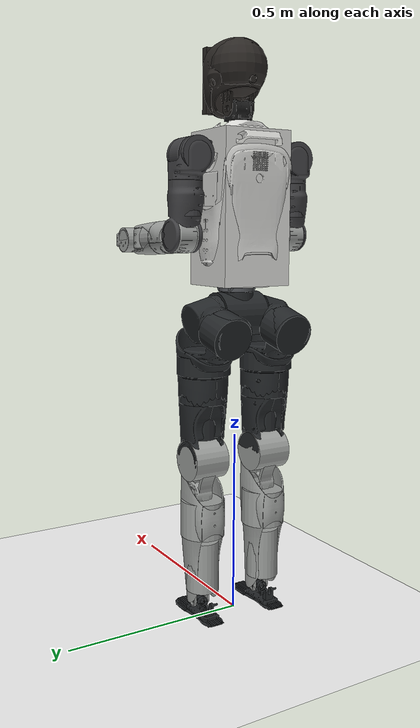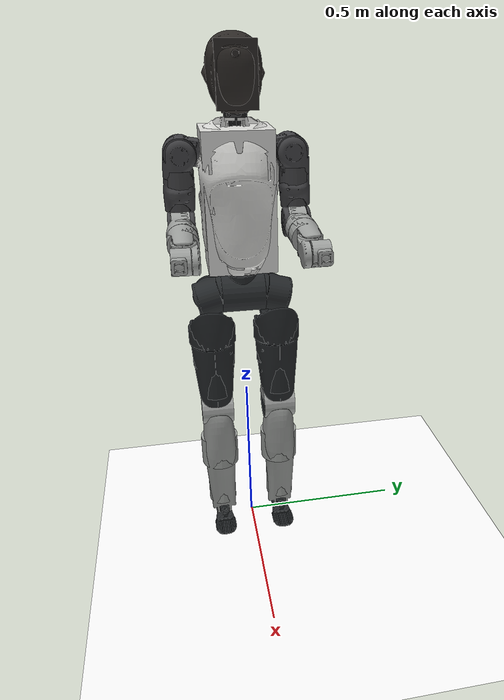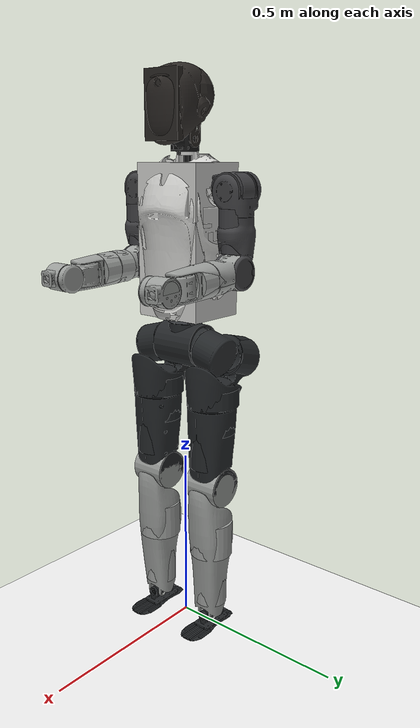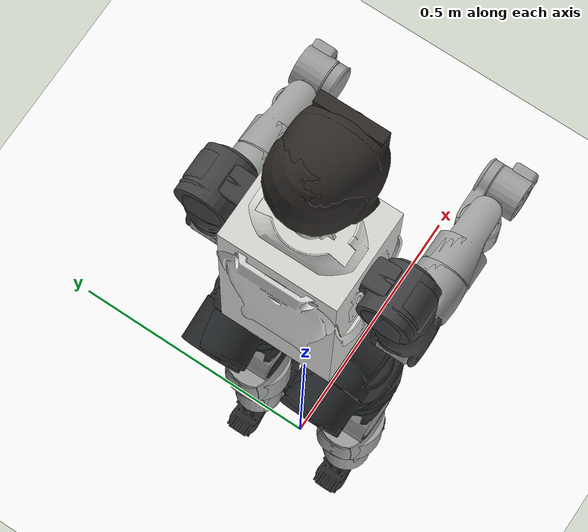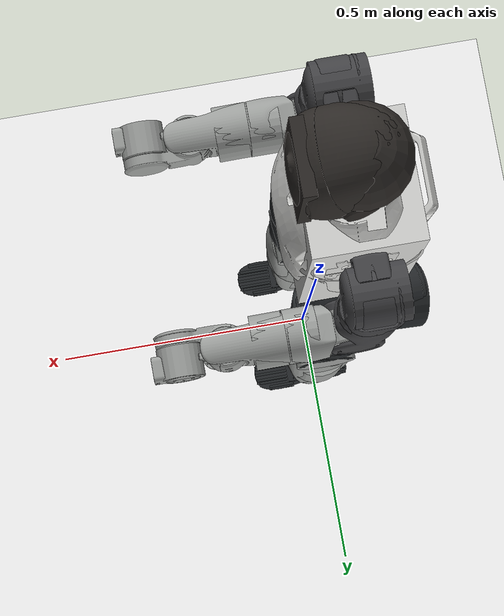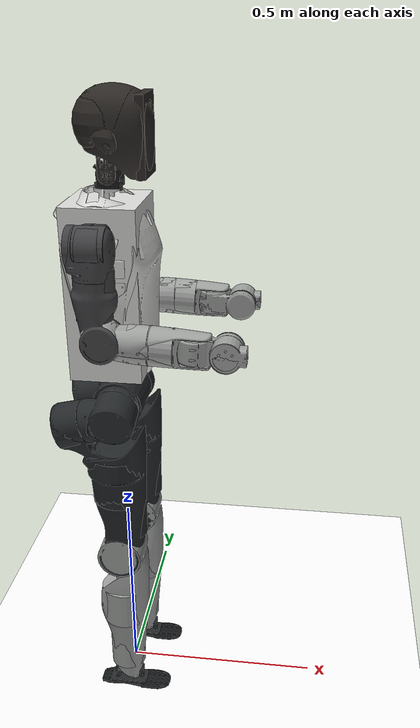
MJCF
<mujoco model="vita02a">
  <compiler angle="radian" meshdir="meshes/"/>

  <asset>
    <mesh name="base_link" content_type="model/stl" file="base_link.STL"/>
    <mesh name="left_hip_pitch_link" content_type="model/stl" file="left_hip_pitch_link.STL"/>
    <mesh name="left_hip_roll_link" content_type="model/stl" file="left_hip_roll_link.STL"/>
    <mesh name="left_hip_yaw_link" content_type="model/stl" file="left_hip_yaw_link.STL"/>
    <mesh name="left_knee_link" content_type="model/stl" file="left_knee_link.STL"/>
    <mesh name="left_ankle_pitch_link" content_type="model/stl" file="left_ankle_pitch_link.STL"/>
    <mesh name="left_ankle_roll_link_noshoes" content_type="model/stl" file="left_ankle_roll_link_noshoes.STL"/>
    <mesh name="right_hip_pitch_link" content_type="model/stl" file="right_hip_pitch_link.STL"/>
    <mesh name="right_hip_roll_link" content_type="model/stl" file="right_hip_roll_link.STL"/>
    <mesh name="right_hip_yaw_link" content_type="model/stl" file="right_hip_yaw_link.STL"/>
    <mesh name="right_knee_link" content_type="model/stl" file="right_knee_link.STL"/>
    <mesh name="right_ankle_pitch_link" content_type="model/stl" file="right_ankle_pitch_link.STL"/>
    <mesh name="right_ankle_roll_link_noshoes" content_type="model/stl" file="right_ankle_roll_link_noshoes.STL"/>
    <mesh name="waist_yaw_link" content_type="model/stl" file="waist_yaw_link.STL"/>
    <mesh name="waist_pitch_link" content_type="model/stl" file="waist_pitch_link.STL"/>
    <mesh name="neck_yaw_link" content_type="model/stl" file="neck_yaw_link.STL"/>
    <mesh name="neck_pitch_link" content_type="model/stl" file="neck_pitch_link.STL"/>
    <mesh name="left_shoulder_pitch_link" content_type="model/stl" file="left_shoulder_pitch_link.STL"/>
    <mesh name="left_shoulder_roll_link" content_type="model/stl" file="left_shoulder_roll_link.STL"/>
    <mesh name="left_shoulder_yaw_link" content_type="model/stl" file="left_shoulder_yaw_link.STL"/>
    <mesh name="left_elbow_link" content_type="model/stl" file="left_elbow_link.STL"/>
    <mesh name="left_wrist_roll_link" content_type="model/stl" file="left_wrist_roll_link.STL"/>
    <mesh name="left_wrist_yaw_link" content_type="model/stl" file="left_wrist_yaw_link.STL"/>
    <mesh name="left_wrist_pitch_link" content_type="model/stl" file="left_wrist_pitch_link.STL"/>
    <mesh name="right_shoulder_pitch_link" content_type="model/stl" file="right_shoulder_pitch_link.STL"/>
    <mesh name="right_shoulder_roll_link" content_type="model/stl" file="right_shoulder_roll_link.STL"/>
    <mesh name="right_shoulder_yaw_link" content_type="model/stl" file="right_shoulder_yaw_link.STL"/>
    <mesh name="right_elbow_link" content_type="model/stl" file="right_elbow_link.STL"/>
    <mesh name="right_wrist_roll_link" content_type="model/stl" file="right_wrist_roll_link.STL"/>
    <mesh name="right_wrist_yaw_link" content_type="model/stl" file="right_wrist_yaw_link.STL"/>
    <mesh name="right_wrist_pitch_link" content_type="model/stl" file="right_wrist_pitch_link.STL"/>

    <texture type="skybox" builtin="gradient" rgb1="1 1 1" rgb2="1 1 1" width="800" height="800"/>
    <texture type="2d" name="groundplane" builtin="checker" mark="edge" rgb1="1 1 1" rgb2="1 1 1" markrgb="0 0 0" width="300" height="300"/>
    <material name="groundplane" texture="groundplane" texuniform="true" texrepeat="5 5" reflectance="0"/>
  </asset>

    <visual>
    <headlight diffuse="0.6 0.6 0.6" ambient="0.1 0.1 0.1" specular="0.9 0.9 0.9"/>
    <rgba haze="0.15 0.25 0.35 1"/>
    <global azimuth="-140" elevation="-20" offwidth="2080" offheight="1170"/>
  </visual>

  <worldbody>
    <geom name="floor" size="0 0 0.01" type="plane" material="groundplane" contype="1" conaffinity="0" priority="1" friction="0.6" condim="3"/>
    <light diffuse=".5 .5 .5" pos="-3 -3 5" dir="3 3 -5" castshadow="true"/>

    <body name="base_link" pos="0 0 0.85">
      <inertial pos="0.00218083 0.00030202 -0.00612254" quat="0.704772 0.702526 0.0724821 -0.0670809" mass="2.0542" diaginertia="0.00486979 0.00479575 0.00310247"/>
      <joint type="free"/>
      <geom type="mesh" contype="0" conaffinity="0" group="1" density="0" rgba="0.145 0.157 0.165 1" mesh="base_link"/>
      <geom name="collision_pelvis_cylinder" size="0.06 0.065" pos="0 0 -0.015" quat="0.707105 0.707108 0 0" type="cylinder" rgba="0.145 0.157 0.165 1"/>
      <body name="left_hip_pitch_link" pos="0 0.07212 -0.019324" quat="0.991445 -0.130526 0 0">
        <inertial pos="-0.00516998 0.0230866 -0.00767416" quat="0.617664 0.390234 0.492381 0.473042" mass="1.758" diaginertia="0.00294457 0.00239881 0.00213272"/>
        <joint name="left_hip_pitch_joint" pos="0 0 0" axis="0 1 0" range="-2.87979 1.74533" actuatorfrcrange="-120 120" armature="0.050803"/>
        <geom quat="0.991445 0.130526 0 0" type="mesh" contype="0" conaffinity="0" group="1" density="0" rgba="0.145 0.157 0.165 1" mesh="left_hip_pitch_link"/>
        <body name="left_hip_roll_link" pos="-0.0727342 0.0287 -0.0194891" quat="0.982963 0.129409 -0.129409 0.017037">
          <inertial pos="0.0322096 0.00221963 -0.0608189" quat="-0.0119663 0.915826 0.0367934 0.399707" mass="3.634" diaginertia="0.0225144 0.0220087 0.00527053"/>
          <joint name="left_hip_roll_joint" pos="0 0 0" axis="1 0 0" range="-0.436332 2.18166" actuatorfrcrange="-120 120" armature="0.050803"/>
          <geom pos="0 0 0" quat="0.991445 -4.63502e-10 0.126078 -0.0337827" type="mesh" contype="0" conaffinity="0" group="1" density="0" rgba="0.145 0.157 0.165 1" mesh="left_hip_roll_link"/>
          <geom name="collision_l_hip_roll_cylinder" size="0.055 0.04" pos="-0.0264137 0.00525188 -0.0034619" quat="0.709812 0.0205665 0.70358 -0.0268006" type="cylinder" rgba="0.145 0.157 0.165 1"/>
          <geom name="collision_l_hip_front_roll_cylinder" size="0.072 0.025" pos="0.0478464 0.00181411 -0.115622" quat="0.991445 -4.63502e-10 0.126078 -0.0337827" type="cylinder" rgba="0.145 0.157 0.165 1"/>
          <body name="left_hip_yaw_link" pos="0.0443175 0.00124992 -0.142065" quat="0.991445 -4.63502e-10 0.126078 -0.0337827">
            <inertial pos="0.0029612 0.00139966 -0.12459" quat="0.999914 0.00904441 -0.00592292 0.00735861" mass="1.718" diaginertia="0.012001 0.0115921 0.00392583"/>
            <joint name="left_hip_yaw_joint" pos="0 0 0" axis="0 0 1" range="-1.5708 1.5708" actuatorfrcrange="-120 120" armature="0.050803"/>
            <geom type="mesh" contype="0" conaffinity="0" group="1" density="0" rgba="0.145 0.157 0.165 1" mesh="left_hip_yaw_link"/>
            <geom name="collision_l_hip_yaw_cylinder" size="0.065 0.0355147" pos="0 0 -0.04" type="cylinder" rgba="0.145 0.157 0.165 1"/>
            <geom name="collision_l_hip_yaw_low_cylinder" size="0.05 0.05" pos="0.015 0 -0.125" type="cylinder" rgba="0.145 0.157 0.165 1"/>
            <body name="left_knee_link" pos="0 0 -0.2333">
              <inertial pos="0.0105787 0.00060343 -0.108443" quat="0.706852 -0.0197452 -0.017935 0.706858" mass="3.982" diaginertia="0.0511409 0.050385 0.00376376"/>
              <joint name="left_knee_joint" pos="0 0 0" axis="0 1 0" range="0 2.18166" actuatorfrcrange="-120 120" armature="0.050803"/>
              <geom type="mesh" contype="0" conaffinity="0" group="1" density="0" rgba="0.62 0.63 0.62 1" mesh="left_knee_link"/>
              <geom name="collision_l_knee_mid_cylinder" size="0.06 0.05" pos="0 0 -0.162823" type="cylinder" rgba="0.62 0.63 0.62 1"/>
              <geom name="collision_l_knee_upper_cylinder" size="0.055 0.05" quat="0.707105 0.707108 0 0" type="cylinder" rgba="0.62 0.63 0.62 1"/>
              <geom name="collision_l_knee_lower_cylinder" size="0.045 0.07" pos="0 0 -0.299334" type="cylinder" rgba="0.62 0.63 0.62 1"/>
              <body name="left_ankle_pitch_link" pos="0.016 0 -0.41">
                <inertial pos="0 0 0" quat="0.5 0.5 -0.5 0.5" mass="0.0409798" diaginertia="4.18e-06 3.51e-06 2.51e-06"/>
                <joint name="left_ankle_pitch_joint" pos="0 0 0" axis="0 1 0" range="-0.959931 0.610865" actuatorfrcrange="-70.5 70.5" armature="0.030135"/>
                <geom type="mesh" contype="0" conaffinity="0" group="1" density="0" rgba="0.145 0.157 0.165 1" mesh="left_ankle_pitch_link"/>
                <body name="left_ankle_roll_link">
                  <inertial pos="-0.019216 0.000498619 -0.00923106" quat="0.00871912 0.707761 0.0103853 0.706322" mass="0.229111" diaginertia="0.00125365 0.00112667 0.000132225"/>
                  <joint name="left_ankle_roll_joint" pos="0 0 0" axis="1 0 0" range="-0.436332 0.436332" actuatorfrcrange="-70.5 70.5" armature="0.030135"/>
                  <geom type="mesh" contype="0" conaffinity="0" group="1" density="0" rgba="0.145 0.157 0.165 1" mesh="left_ankle_roll_link_noshoes"/>
                  <geom name="collision_l_foot0_cylinder" size="0.008 0.025" pos="0.046 0.0278 -0.04" quat="0.707105 0 0.707108 0" type="cylinder" rgba="0.145 0.157 0.165 1"/>
                  <geom name="collision_l_foot1_cylinder" size="0.008 0.09" pos="0 0.018 -0.04" quat="0.707105 0 0.707108 0" type="cylinder" rgba="0.145 0.157 0.165 1"/>
                  <geom name="collision_l_foot2_cylinder" size="0.008 0.094" pos="0.001222 0.0117 -0.04" quat="0.707105 0 0.707108 0" type="cylinder" rgba="0.145 0.157 0.165 1"/>
                  <geom name="collision_l_foot3_cylinder" size="0.008 0.095" pos="0.0021 0 -0.04" quat="0.707105 0 0.707108 0" type="cylinder" rgba="0.145 0.157 0.165 1"/>
                  <geom name="collision_l_foot4_cylinder" size="0.008 0.094" pos="0.001222 -0.0117 -0.04" quat="0.707105 0 0.707108 0" type="cylinder" rgba="0.145 0.157 0.165 1"/>
                  <geom name="collision_l_foot5_cylinder" size="0.008 0.09" pos="0 -0.018 -0.04" quat="0.707105 0 0.707108 0" type="cylinder" rgba="0.145 0.157 0.165 1"/>
                  <geom name="collision_l_foot6_cylinder" size="0.008 0.025" pos="0.046 -0.0278 -0.04" quat="0.707105 0 0.707108 0" type="cylinder" rgba="0.145 0.157 0.165 1"/>
                  <body name="left_toe_link" pos="0.097 0.0 -0.048"/>
                  <body name="left_heel_link" pos="-0.093 0.0 -0.048"/>
                </body>
</body>
            </body>
          </body>
        </body>
      </body>
      <body name="right_hip_pitch_link" pos="0 -0.0721198 -0.0193244" quat="0.991445 0.130526 0 0">
        <inertial pos="-0.00516998 -0.0230866 -0.00767416" quat="0.473042 0.492381 0.390234 0.617664" mass="1.758" diaginertia="0.00294457 0.00239881 0.00213272"/>
        <joint name="right_hip_pitch_joint" pos="0 0 0" axis="0 1 0" range="-2.87979 1.74533" actuatorfrcrange="-120 120" armature="0.050803"/>
        <geom quat="0.991445 -0.130526 0 0" type="mesh" contype="0" conaffinity="0" group="1" density="0" rgba="0.145 0.157 0.165 1" mesh="right_hip_pitch_link"/>
        <body name="right_hip_roll_link" pos="-0.0727342 -0.0287 -0.0194891" quat="0.982963 -0.129409 -0.129409 -0.017037">
          <inertial pos="0.0322096 -0.00221963 -0.0608189" quat="0.0119663 0.915826 -0.0367934 0.399707" mass="3.634" diaginertia="0.0225144 0.0220087 0.00527053"/>
          <joint name="right_hip_roll_joint" pos="0 0 0" axis="1 0 0" range="-2.18166 0.436332" actuatorfrcrange="-120 120" armature="0.050803"/>
          <geom pos="0 0 0" quat="0.991445 4.63502e-10 0.126078 0.0337827" type="mesh" contype="0" conaffinity="0" group="1" density="0" rgba="0.145 0.157 0.165 1" mesh="right_hip_roll_link"/>
          <geom name="collision_r_hip_roll_cylinder" size="0.055 0.04" pos="-0.0268826 0.00173214 -0.00340227" quat="0.709812 -0.0205665 0.70358 0.0268006" type="cylinder" rgba="0.145 0.157 0.165 1"/>
          <geom name="collision_r_hip_front_roll_cylinder" size="0.072 0.025" pos="0.0478464 -0.00181411 -0.115622" quat="0.991445 4.63502e-10 0.126078 0.0337827" type="cylinder" rgba="0.145 0.157 0.165 1"/>
          <body name="right_hip_yaw_link" pos="0.0443175 -0.00124992 -0.142065" quat="0.991445 4.63502e-10 0.126078 0.0337827">
            <inertial pos="0.0029612 -0.00139966 -0.12459" quat="0.999914 -0.00904441 -0.00592292 -0.00735861" mass="1.718" diaginertia="0.012001 0.0115921 0.00392583"/>
            <joint name="right_hip_yaw_joint" pos="0 0 0" axis="0 0 1" range="-1.5708 1.5708" actuatorfrcrange="-120 120" armature="0.050803"/>
            <geom type="mesh" contype="0" conaffinity="0" group="1" density="0" rgba="0.145 0.157 0.165 1" mesh="right_hip_yaw_link"/>
            <geom name="collision_r_hip_yaw_cylinder" size="0.065 0.0355147" pos="0 0 -0.04" type="cylinder" rgba="0.145 0.157 0.165 1"/>
            <geom name="collision_r_hip_yaw_low_cylinder" size="0.05 0.05" pos="0.015 0 -0.125" type="cylinder" rgba="0.145 0.157 0.165 1"/>
            <body name="right_knee_link" pos="0 0 -0.2333">
              <inertial pos="0.0105787 -0.00060343 -0.108443" quat="0.706858 -0.017935 -0.0197452 0.706852" mass="3.982" diaginertia="0.0511409 0.050385 0.00376376"/>
              <joint name="right_knee_joint" pos="0 0 0" axis="0 1 0" range="0 2.18166" actuatorfrcrange="-120 120" armature="0.050803"/>
              <geom type="mesh" contype="0" conaffinity="0" group="1" density="0" rgba="0.62 0.63 0.62 1" mesh="right_knee_link"/>
              <geom name="collision_r_knee_mid_cylinder" size="0.06 0.05" pos="0 0 -0.162823" type="cylinder" rgba="0.62 0.63 0.62 1"/>
              <geom name="collision_r_knee_upper_cylinder" size="0.055 0.05" quat="0.707105 0.707108 0 0" type="cylinder" rgba="0.62 0.63 0.62 1"/>
              <geom name="collision_r_knee_lower_cylinder" size="0.045 0.07" pos="0 0 -0.299334" type="cylinder" rgba="0.62 0.63 0.62 1"/>
              <body name="right_ankle_pitch_link" pos="0.016 0.00044735 -0.41">
                <inertial pos="0 0 0" quat="0.5 0.5 -0.5 0.5" mass="0.0409798" diaginertia="4.18e-06 3.51e-06 2.51e-06"/>
                <joint name="right_ankle_pitch_joint" pos="0 0 0" axis="0 1 0" range="-0.959931 0.610865" actuatorfrcrange="-70.5 70.5" armature="0.030135"/>
                <geom type="mesh" contype="0" conaffinity="0" group="1" density="0" rgba="0.145 0.157 0.165 1" mesh="right_ankle_pitch_link"/>
                <body name="right_ankle_roll_link">
                  <inertial pos="-0.0192415 -0.000503595 -0.00846505" quat="-0.00845688 0.706585 -0.0101247 0.707505" mass="0.22908" diaginertia="0.0012479 0.00112101 0.000126891"/>
                  <joint name="right_ankle_roll_joint" pos="0 0 0" axis="1 0 0" range="-0.436332 0.436332" actuatorfrcrange="-70.5 70.5" armature="0.030135"/>
                  <geom type="mesh" contype="0" conaffinity="0" group="1" density="0" rgba="0.145 0.157 0.165 1" mesh="right_ankle_roll_link_noshoes"/>
                  <geom name="collision_r_foot0_cylinder" size="0.008 0.025" pos="0.046 0.0278 -0.04" quat="0.707105 0 0.707108 0" type="cylinder" rgba="0.145 0.157 0.165 1"/>
                  <geom name="collision_r_foot1_cylinder" size="0.008 0.09" pos="0 0.018 -0.04" quat="0.707105 0 0.707108 0" type="cylinder" rgba="0.145 0.157 0.165 1"/>
                  <geom name="collision_r_foot2_cylinder" size="0.008 0.094" pos="0.001222 0.0117 -0.04" quat="0.707105 0 0.707108 0" type="cylinder" rgba="0.145 0.157 0.165 1"/>
                  <geom name="collision_r_foot3_cylinder" size="0.008 0.095" pos="0.0021 0 -0.04" quat="0.707105 0 0.707108 0" type="cylinder" rgba="0.145 0.157 0.165 1"/>
                  <geom name="collision_r_foot4_cylinder" size="0.008 0.094" pos="0.001222 -0.0117 -0.04" quat="0.707105 0 0.707108 0" type="cylinder" rgba="0.145 0.157 0.165 1"/>
                  <geom name="collision_r_foot5_cylinder" size="0.008 0.09" pos="0 -0.018 -0.04" quat="0.707105 0 0.707108 0" type="cylinder" rgba="0.145 0.157 0.165 1"/>
                  <geom name="collision_r_foot6_cylinder" size="0.008 0.025" pos="0.046 -0.0278 -0.04" quat="0.707105 0 0.707108 0" type="cylinder" rgba="0.145 0.157 0.165 1"/>
                  <body name="right_toe_link" pos="0.097 0.0 -0.048"/>
                  <body name="right_heel_link" pos="-0.093 0.0 -0.048"/>
                </body>
</body>
            </body>
          </body>
        </body>
      </body>
      <body name="waist_yaw_link" pos="0.0003 0 0.041">
        <inertial pos="-5.755e-05 0.00362589 0.0431666" quat="0.653579 0.756098 0.0298748 -0.016081" mass="0.82" diaginertia="0.000676705 0.000593718 0.000576566"/>
        <joint name="waist_yaw_joint" pos="0 0 0" axis="0 0 1" range="-1.5708 1.5708" actuatorfrcrange="-70.5 70.5" armature="0.0150675"/>
        <geom type="mesh" contype="0" conaffinity="0" group="1" density="0" rgba="0.325 0.337 0.353 1" mesh="waist_yaw_link"/>
        <geom name="collision_waist_yaw_cylinder" size="0.04 0.04" pos="0 0 0.035742" quat="0.707105 0.707108 0 0" type="cylinder" rgba="0.325 0.337 0.353 1"/>
        <body name="waist_pitch_link" pos="0 0 0.0527">
          <inertial pos="-0.0131261 -0.0001286 0.174892" quat="0.999978 -0.0024116 -0.00505652 0.00349409" mass="13.126" diaginertia="0.206252 0.177273 0.0629778"/>
          <joint name="waist_pitch_joint" pos="0 0 0" axis="0 1 0" range="-0.523599 0.523599" actuatorfrcrange="-70.5 70.5" armature="0.0150675"/>
          <geom type="mesh" contype="0" conaffinity="0" group="1" density="0" rgba="0.851 0.851 0.839 1" mesh="waist_pitch_link"/>
          <geom name="collision_body_box" size="0.085 0.1 0.2" pos="-0.013 0 0.17" type="box" rgba="0.851 0.851 0.839 1"/>
          <body name="neck_yaw_link" pos="-0.0119258 2.86087e-05 0.357">
            <inertial pos="0.00824733 0.00179106 0.0594087" quat="0.99228 0.0544099 0.110014 -0.0177749" mass="0.355345" diaginertia="0.000273898 0.000232851 0.000156742"/>
            <joint name="neck_yaw_joint" pos="0 0 0" axis="0 0 1" range="-1.39626 1.39626" actuatorfrcrange="-6 6" armature="0.0090625"/>
            <geom type="mesh" contype="0" conaffinity="0" group="1" density="0" rgba="0.1 0.1 0.1 1" mesh="neck_yaw_link"/>
            <body name="neck_pitch_link" pos="0.01 0.000399661 0.0694">
              <inertial pos="0.0394995 0.00033575 0.0823968" quat="0.945175 -0.0207398 -0.0629088 0.319775" mass="1.33716" diaginertia="0.0048541 0.00474907 0.00328117"/>
              <joint name="neck_pitch_joint" pos="0 0 0" axis="0 1 0" range="-0.785398 0.523599" actuatorfrcrange="-6 6" armature="0.0090625"/>
              <geom type="mesh" contype="0" conaffinity="0" group="1" density="0" rgba="0.176 0.161 0.149 1" mesh="neck_pitch_link"/>
              <geom name="collision_head_sphere" size="0.075" pos="0 0 0.105" rgba="0.176 0.161 0.149 1"/>
              <geom name="collision_face_box" size="0.01 0.055 0.085" pos="0.08 0 0.08" type="box" rgba="0.176 0.161 0.149 1"/>
            </body>
          </body>
          <body name="left_shoulder_pitch_link" pos="-0.01325 0.0952755 0.308754" quat="0.990268 0.139173 0 0">
            <inertial pos="-0.0013 0.05396 -0.022007" quat="0.799147 0.600938 0.00960715 0.0120778" mass="1.11" diaginertia="0.00128816 0.00106782 0.000865753"/>
            <joint name="left_shoulder_pitch_joint" pos="0 0 0" axis="0 1 0" range="-2.56563 2.56563" actuatorfrcrange="-60 60" armature="0.01752"/>
            <geom quat="0.990268 -0.139173 0 0" type="mesh" contype="0" conaffinity="0" group="1" density="0" rgba="0.26 0.26 0.27 1" mesh="left_shoulder_pitch_link"/>
            <geom name="collision_l_shoulder_pitch_cylinder" size="0.045 0.0425" pos="-0.0065 0.0560219 -0.0223058" quat="0.700224 -0.0984115 0.700226 -0.0984115" type="cylinder" rgba="0.26 0.26 0.27 1"/>
            <body name="left_shoulder_roll_link" pos="-0.00015 0.0572 -0.0238" quat="0.990268 -0.139173 0 0">
              <inertial pos="0.00363843 0.00654776 -0.0671287" quat="0.710116 0.0234104 -0.0369263 0.702726" mass="1.186" diaginertia="0.00245238 0.00220963 0.00124337"/>
              <joint name="left_shoulder_roll_joint" pos="0 0 0" axis="1 0 0" range="-0.235619 2.27766" actuatorfrcrange="-60 60" armature="0.01752"/>
              <geom type="mesh" contype="0" conaffinity="0" group="1" density="0" rgba="0.26 0.26 0.27 1" mesh="left_shoulder_roll_link"/>
              <geom name="collision_l_shoulder_roll_cylinder" size="0.042 0.0375" pos="0.0074 0.0065 -0.079" type="cylinder" rgba="0.26 0.26 0.27 1"/>
              <body name="left_shoulder_yaw_link" pos="0.003408 0.0073253 -0.06213" quat="0.999962 0.00872629 0 0">
                <inertial pos="0.00326425 -0.00147369 -0.0806756" quat="0.997186 -0.0253904 -0.0608652 0.0356349" mass="0.5653" diaginertia="0.00194574 0.00185418 0.000937747"/>
                <joint name="left_shoulder_yaw_joint" pos="0 0 0" axis="0 0 1" range="-2.4583 2.42817" actuatorfrcrange="-60 60" armature="0.01752"/>
                <geom quat="0.999962 -0.00872629 0 0" type="mesh" contype="0" conaffinity="0" group="1" density="0" rgba="0.26 0.26 0.27 1" mesh="left_shoulder_yaw_link"/>
                <geom name="collision_l_shoulder_yaw_cylinder" size="0.04 0.045" pos="-0.00134 -0.000785338 -0.0449931" quat="0.999962 -0.00872629 0 0" type="cylinder" rgba="0.26 0.26 0.27 1"/>
                <body name="left_elbow_link" pos="0.0129 0 -0.138801">
                  <inertial pos="0.0319167 0.000679862 -0.00187897" quat="0.481146 0.517576 0.509787 0.490643" mass="1.66476" diaginertia="0.00378634 0.00356012 0.00116441"/>
                  <joint name="left_elbow_joint" pos="0 0 0" axis="0 1 0" range="-0.667414 2.42182" actuatorfrcrange="-60 60" armature="0.01752"/>
                  <geom pos="0 0 0" quat="0.999962 -0.00872629 0 0" type="mesh" contype="0" conaffinity="0" group="1" density="0" rgba="0.62 0.63 0.62 1" mesh="left_elbow_link"/>
                  <geom name="collision_l_elbow_cylinder" size="0.043 0.025" pos="0.083427 -8.13785e-05 -0.00466229" quat="0.707079 -0.00617167 0.707081 -0.00617167" type="cylinder" rgba="0.62 0.63 0.62 1"/>
                  <geom name="collision_l_elbow_rotor_cylinder" size="0.044 0.025" quat="0.713248 0.700912 0 0" type="cylinder" rgba="0.62 0.63 0.62 1"/>
                  <body name="left_wrist_roll_link" pos="0.10427 0.000500467 -0.00511571" quat="0.999661 -0.00873416 0.0245069 0.000214119">
                    <inertial pos="0.0459384 0.00130195 0.00141461" quat="0.502127 0.496378 0.492673 0.508675" mass="0.31403" diaginertia="0.000563465 0.000435554 0.00031394"/>
                    <joint name="left_wrist_roll_joint" pos="0 0 0" axis="1 0 0" range="-2.32129 2.32129" actuatorfrcrange="-15 15" armature="0.0070547"/>
                    <geom type="mesh" contype="0" conaffinity="0" group="1" density="0" rgba="0.62 0.63 0.62 1" mesh="left_wrist_roll_link"/>
                    <geom name="collision_l_wrist_roll_cylinder" size="0.043 0.025" pos="0.03 0 0" quat="0.499998 0.5 -0.500002 -0.5" type="cylinder" rgba="0.62 0.63 0.62 1"/>
                    <body name="left_wrist_yaw_link" pos="0.096 -0.000493387 0.0281957" quat="0.999962 0.00874834 0 0">
                      <inertial pos="0.00926513 -0.00395341 -0.0287459" quat="0.576752 0.582076 0.403415 0.407186" mass="0.731526" diaginertia="0.000844731 0.000834213 0.000407236"/>
                      <joint name="left_wrist_yaw_joint" pos="0 0 0" axis="0 0 1" range="-0.912807 1.70519" actuatorfrcrange="-15 15" armature="0.0070547"/>
                      <geom pos="0 0 0" quat="0.999962 -0.00874834 0 0" type="mesh" contype="0" conaffinity="0" group="1" density="0" rgba="0.62 0.63 0.62 1" mesh="left_wrist_yaw_link"/>
                      <geom name="collision_wrist_yaw_l_cylinder" size="0.034 0.025" pos="0 -0.00052488 -0.0299954" quat="0.999962 -0.00874834 0 0" type="cylinder" rgba="0.62 0.63 0.62 1"/>
                      <body name="left_wrist_pitch_link" pos="0.0736184 0.0305912 -0.0285635" quat="1 -1.12982e-05 0 0">
                        <inertial pos="0.045914 -0.0247401 0.0036696" quat="0.154653 0.66368 0.173681 0.710947" mass="0.945829" diaginertia="0.00402328 0.00385398 0.00070471"/>
                        <joint name="left_wrist_pitch_joint" pos="0 0 0" axis="0 1 0" range="-1.87099 1.96873" actuatorfrcrange="-15 15" armature="0.0070547"/>
                        <geom quat="0.999962 -0.00873704 0 0" type="mesh" contype="0" conaffinity="0" group="1" density="0" rgba="0.62 0.63 0.62 1" mesh="left_wrist_pitch_link"/>
                        <geom name="collision_wrist_pitch_l_cylinder" size="0.035 0.025" pos="0 -0.0199969 0.000349468" quat="0.700902 -0.713258 0 0" type="cylinder" rgba="0.62 0.63 0.62 1"/>
                              <body name="left_wrist_task" pos="0.0458 -0.01453 0.00187" quat="0.5 -0.5 0.5 -0.5"/>
</body>
                    </body>
                  </body>
                </body>
              </body>
            </body>
          </body>
          <body name="right_shoulder_pitch_link" pos="-0.01325 -0.0952767 0.30875" quat="0.990268 -0.139173 0 0">
            <inertial pos="-0.00130011 -0.0539604 -0.0220067" quat="0.600938 0.799147 -0.0120778 -0.00960715" mass="1.11" diaginertia="0.00128816 0.00106782 0.000865753"/>
            <joint name="right_shoulder_pitch_joint" pos="0 0 0" axis="0 1 0" range="-2.56563 2.56563" actuatorfrcrange="-60 60" armature="0.01752"/>
            <geom quat="0.990268 0.139173 0 0" type="mesh" contype="0" conaffinity="0" group="1" density="0" rgba="0.26 0.26 0.27 1" mesh="right_shoulder_pitch_link"/>
            <geom name="collision_r_shoulder_pitch_cylinder" size="0.045 0.0425" pos="-0.0065 -0.0560219 -0.0223058" quat="0.700224 0.0984115 0.700226 0.0984115" type="cylinder" rgba="0.26 0.26 0.27 1"/>
            <body name="right_shoulder_roll_link" pos="-0.000149987 -0.0572 -0.0238" quat="0.990268 0.139173 0 0">
              <inertial pos="0.00363843 -0.00654776 -0.0671287" quat="0.702726 -0.0369263 0.0234104 0.710116" mass="1.186" diaginertia="0.00245238 0.00220963 0.00124337"/>
              <joint name="right_shoulder_roll_joint" pos="0 0 0" axis="1 0 0" range="-2.27766 0.235619" actuatorfrcrange="-60 60" armature="0.01752"/>
              <geom type="mesh" contype="0" conaffinity="0" group="1" density="0" rgba="0.26 0.26 0.27 1" mesh="right_shoulder_roll_link"/>
              <geom name="collision_r_shoulder_roll_cylinder" size="0.042 0.0375" pos="0.0074 -0.0065 -0.079" type="cylinder" rgba="0.26 0.26 0.27 1"/>
              <body name="right_shoulder_yaw_link" pos="0.00340796 -0.00732529 -0.0621299" quat="0.999962 -0.00872654 0 0">
                <inertial pos="0.00326425 0.00147369 -0.0806756" quat="0.997186 0.0253904 -0.0608652 -0.0356349" mass="0.5653" diaginertia="0.00194574 0.00185418 0.000937747"/>
                <joint name="right_shoulder_yaw_joint" pos="0 0 0" axis="0 0 1" range="-2.42817 2.4583" actuatorfrcrange="-60 60" armature="0.01752"/>
                <geom quat="0.999962 0.00872654 0 0" type="mesh" contype="0" conaffinity="0" group="1" density="0" rgba="0.26 0.26 0.27 1" mesh="right_shoulder_yaw_link"/>
                <geom name="collision_r_shoulder_yaw_cylinder" size="0.04 0.045" pos="-0.00134 0.000785358 -0.0449931" quat="0.999962 0.00872654 0 0" type="cylinder" rgba="0.26 0.26 0.27 1"/>
                <body name="right_elbow_link" pos="0.0129 0 -0.1388">
                  <inertial pos="0.0319167 -0.000679861 -0.00187897" quat="0.490643 0.509787 0.517576 0.481146" mass="1.66476" diaginertia="0.00378634 0.00356012 0.00116441"/>
                  <joint name="right_elbow_joint" pos="0 0 0" axis="0 1 0" range="-0.667414 2.42182" actuatorfrcrange="-60 60" armature="0.01752"/>
                  <geom pos="0 0 0" quat="0.999962 0.00872654 0 0" type="mesh" contype="0" conaffinity="0" group="1" density="0" rgba="0.62 0.63 0.62 1" mesh="right_elbow_link"/>
                  <geom name="collision_r_elbow_cylinder" size="0.043 0.025" pos="0.083427 8.13805e-05 -0.00466229" quat="0.707079 0.00617167 0.707081 0.00617167" type="cylinder" rgba="0.62 0.63 0.62 1"/>
                  <geom name="collision_r_elbow_rotor_cylinder" size="0.044 0.025" quat="0.700909 0.713251 0 0" type="cylinder" rgba="0.62 0.63 0.62 1"/>
                  <body name="right_wrist_roll_link" pos="0.104275 -0.000500448 -0.00511566" quat="0.9997 -1.13128e-05 0.0245078 2.77334e-07">
                    <inertial pos="0.0459385 -0.00132636 0.00139148" quat="0.504352 0.497105 0.491955 0.506454" mass="0.31403" diaginertia="0.000563469 0.000435561 0.00031394"/>
                    <joint name="right_wrist_roll_joint" pos="0 0 0" axis="1 0 0" range="-2.32129 2.32129" actuatorfrcrange="-15 15" armature="0.0070547"/>
                    <geom type="mesh" contype="0" conaffinity="0" group="1" density="0" rgba="0.62 0.63 0.62 1" mesh="right_wrist_roll_link"/>
                    <geom name="collision_r_wrist_roll_cylinder" size="0.043 0.025" pos="0.03 0 0" quat="0.499998 0.5 -0.500002 -0.5" type="cylinder" rgba="0.62 0.63 0.62 1"/>
                    <body name="right_wrist_yaw_link" pos="0.096 0 0.0282">
                      <inertial pos="0.00926513 0.00395341 -0.0287459" quat="0.407186 0.403415 0.582076 0.576752" mass="0.731526" diaginertia="0.000844731 0.000834213 0.000407236"/>
                      <joint name="right_wrist_yaw_joint" pos="0 0 0" axis="0 0 1" range="-1.70519 0.912807" actuatorfrcrange="-15 15" armature="0.0070547"/>
                      <geom type="mesh" contype="0" conaffinity="0" group="1" density="0" rgba="0.62 0.63 0.62 1" mesh="right_wrist_yaw_link"/>
                      <geom name="collision_wrist_yaw_r_cylinder" size="0.034 0.025" pos="0 0 -0.03" type="cylinder" rgba="0.62 0.63 0.62 1"/>
                      <body name="right_wrist_pitch_link" pos="0.073618 -0.030591 -0.028563">
                        <inertial pos="0.045914 0.0247401 0.0036696" quat="-0.154653 0.66368 -0.173681 0.710947" mass="0.945829" diaginertia="0.00402328 0.00385398 0.00070471"/>
                        <joint name="right_wrist_pitch_joint" pos="0 0 0" axis="0 1 0" range="-1.87099 1.96873" actuatorfrcrange="-15 15" armature="0.0070547"/>
                        <geom type="mesh" contype="0" conaffinity="0" group="1" density="0" rgba="0.62 0.63 0.62 1" mesh="right_wrist_pitch_link"/>
                        <geom name="collision_wrist_pitch_r_cylinder" size="0.035 0.025" pos="0 0.02 0" quat="0.707105 -0.707108 0 0" type="cylinder" rgba="0.62 0.63 0.62 1"/>
                              <body name="right_wrist_task" pos="0.0458 0.0145 0.00212" quat="0.5 0.5 0.5 0.5"/>
</body>
                    </body>
                  </body>
                </body>
              </body>
            </body>
          </body>
        </body>
      </body>
    </body>
  </worldbody>
</mujoco>
